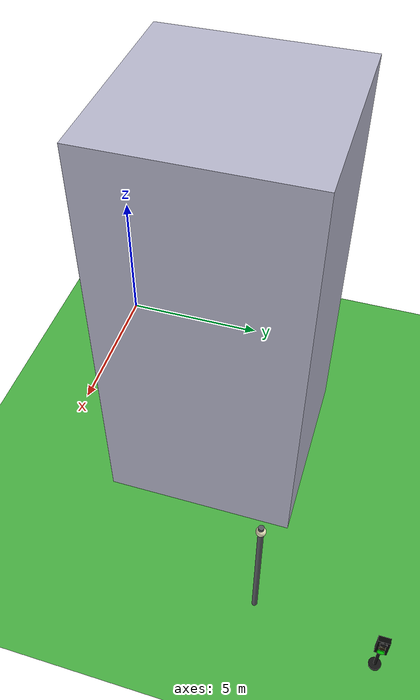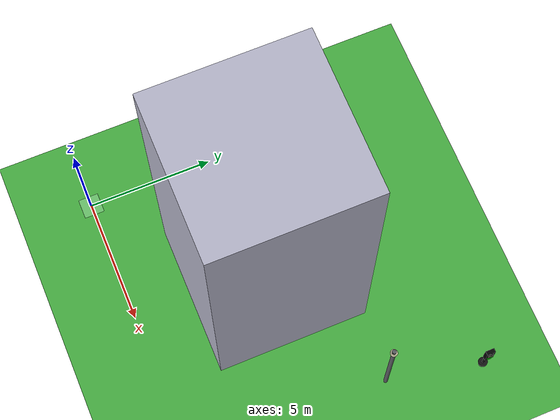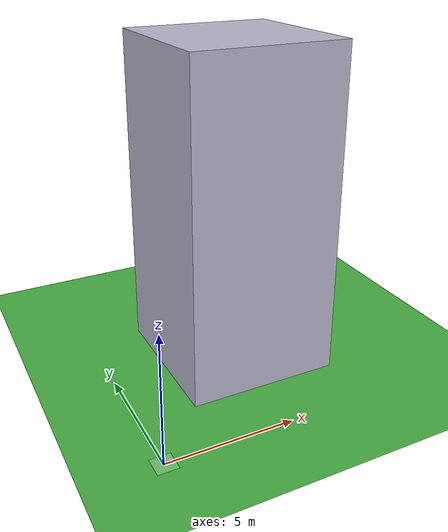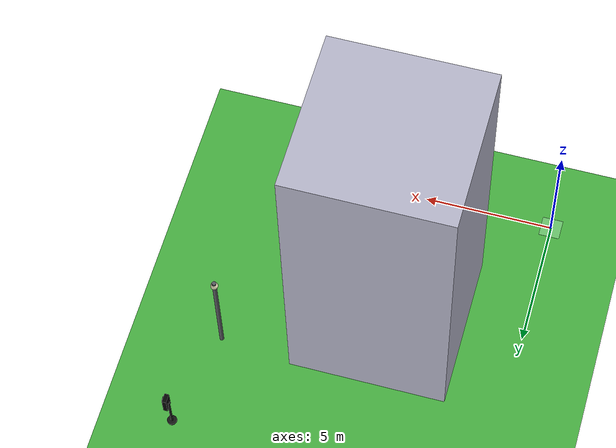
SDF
<sdf version="1.10">
 <world name="city_second">
  <model name="ground_plane">
   <static>true</static>
   <link name="link">
    <collision name="collision">
     <geometry><plane><normal>0 0 1</normal><size>300 300</size></plane></geometry>
    </collision>
    <visual name="visual">
     <geometry><plane><normal>0 0 1</normal><size>300 300</size></plane></geometry>
     <material>
      <ambient>0.280000001 0.689999998 0.25999999 1</ambient>
      <diffuse>0.280000001 0.689999998 0.25999999 1</diffuse>
      <specular>0.0299999993 0.0299999993 0.0299999993 1</specular>
     </material>
    </visual>
    <inertial>
     <mass>1</mass>
     <inertia><ixx>1</ixx><ixy>0</ixy><ixz>0</ixz><iyy>1</iyy><iyz>0</iyz><izz>1</izz></inertia>
    </inertial>
   </link>
  </model>
  <model name="house_2_2">
   <static>true</static>
   <pose>5.2000000000000002 5.2999999999999998 6.5 0 0 0</pose>
   <link name="link">
    <collision name="collision"><geometry><box><size>6 6 13</size></box></geometry></collision>
    <visual name="visual">
     <geometry><box><size>6 6 13</size></box></geometry>
     <material>
      <ambient>0.720000029 0.720000029 0.800000012 1</ambient>
      <diffuse>0.720000029 0.720000029 0.800000012 1</diffuse>
      <specular>0.0299999993 0.0299999993 0.0299999993 1</specular>
     </material>
    </visual>
    <inertial>
     <mass>1</mass>
     <inertia><ixx>1</ixx><ixy>0</ixy><ixz>0</ixz><iyy>1</iyy><iyz>0</iyz><izz>1</izz></inertia>
    </inertial>
   </link>
  </model>
  <model name="robot_spawn_sidewalk_hint">
   <static>true</static>
   <pose>0 0 0.021000000000000001 0 0 0</pose>
   <link name="link">
    <visual name="visual">
     <geometry><box><size>0.80000000000000004 0.80000000000000004 0.0050000000000000001</size></box></geometry>
     <material>
      <ambient>0.550000012 0.860000014 0.569999993 0.649999976</ambient>
      <diffuse>0.550000012 0.860000014 0.569999993 0.649999976</diffuse>
      <specular>0 0 0 1</specular>
     </material>
     <transparency>0.34999999999999998</transparency>
    </visual>
    <inertial>
     <mass>1</mass>
     <inertia><ixx>1</ixx><ixy>0</ixy><ixz>0</ixz><iyy>1</iyy><iyz>0</iyz><izz>1</izz></inertia>
    </inertial>
   </link>
  </model>
  <model name="lamp_1_2_10">
   <static>true</static>
   <pose>10.9572 7.9459400000000002 2.2000000000000002 0 0 0</pose>
   <link name="link">
    <collision name="collision">
     <geometry>
      <cylinder><radius>0.080000000000000002</radius><length>4.4000000000000004</length></cylinder>
     </geometry>
    </collision>
    <visual name="pole">
     <geometry>
      <cylinder><radius>0.080000000000000002</radius><length>4.4000000000000004</length></cylinder>
     </geometry>
     <material>
      <ambient>0.349999994 0.360000014 0.379999995 1</ambient>
      <diffuse>0.349999994 0.360000014 0.379999995 1</diffuse>
      <specular>0.0299999993 0.0299999993 0.0299999993 1</specular>
     </material>
    </visual>
    <visual name="lamp_head">
     <pose>0 0 2 0 0 0</pose>
     <geometry><sphere><radius>0.14000000000000001</radius></sphere></geometry>
     <material>
      <ambient>0.959999979 0.939999998 0.779999971 1</ambient>
      <diffuse>0.959999979 0.939999998 0.779999971 1</diffuse>
      <specular>0.0299999993 0.0299999993 0.0299999993 1</specular>
     </material>
    </visual>
    <inertial>
     <mass>1</mass>
     <inertia><ixx>1</ixx><ixy>0</ixy><ixz>0</ixz><iyy>1</iyy><iyz>0</iyz><izz>1</izz></inertia>
    </inertial>
   </link>
  </model>
  <model name="simple_traffic_light_green_east_1_2">
   <static>true</static>
   <pose>11.719691132736202 11.671792408999575 -1.3877787807814457e-17 0 0 -1.5707999672671704</pose>
   <link name="base">
    <pose>0 0 0.040000000000000001 0 0 0</pose>
    <collision name="collision">
     <geometry>
      <cylinder><radius>0.17999999999999999</radius><length>0.080000000000000002</length></cylinder>
     </geometry>
    </collision>
    <visual name="visual">
     <geometry>
      <cylinder><radius>0.17999999999999999</radius><length>0.080000000000000002</length></cylinder>
     </geometry>
     <material>
      <ambient>0.0799999982 0.0799999982 0.0799999982 1</ambient>
      <diffuse>0.0799999982 0.0799999982 0.0799999982 1</diffuse>
      <specular>0.150000006 0.150000006 0.150000006 1</specular>
      <emissive>0 0 0 1</emissive>
     </material>
    </visual>
   </link>
   <link name="pole">
    <pose>0 0 0.80000000000000004 0 0 0</pose>
    <collision name="collision">
     <geometry>
      <cylinder><radius>0.044999999999999998</radius><length>1.6000000000000001</length></cylinder>
     </geometry>
    </collision>
    <visual name="visual">
     <geometry>
      <cylinder><radius>0.044999999999999998</radius><length>1.6000000000000001</length></cylinder>
     </geometry>
     <material>
      <ambient>0.0799999982 0.0799999982 0.0799999982 1</ambient>
      <diffuse>0.0799999982 0.0799999982 0.0799999982 1</diffuse>
      <specular>0.150000006 0.150000006 0.150000006 1</specular>
      <emissive>0 0 0 1</emissive>
     </material>
    </visual>
   </link>
   <link name="signal_box">
    <pose>0 0.089999999999999997 1.55 0 0 0</pose>
    <collision name="collision">
     <geometry><box><size>0.34000000000000002 0.16 0.71999999999999997</size></box></geometry>
    </collision>
    <visual name="visual">
     <geometry><box><size>0.34000000000000002 0.16 0.71999999999999997</size></box></geometry>
     <material>
      <ambient>0.0199999996 0.0199999996 0.0199999996 1</ambient>
      <diffuse>0.0199999996 0.0199999996 0.0199999996 1</diffuse>
      <specular>0.150000006 0.150000006 0.150000006 1</specular>
      <emissive>0 0 0 1</emissive>
     </material>
    </visual>
   </link>
   <link name="red_lens">
    <pose>0 0.18099999999999999 1.78 1.5707963268 0 0</pose>
    <collision name="collision">
     <geometry><cylinder><radius>0.105</radius><length>0.035000000000000003</length></cylinder></geometry>
    </collision>
    <visual name="visual">
     <geometry><cylinder><radius>0.105</radius><length>0.035000000000000003</length></cylinder></geometry>
     <material>
      <ambient>0.0799999982 0.0799999982 0.0799999982 1</ambient>
      <diffuse>0.0799999982 0.0799999982 0.0799999982 1</diffuse>
      <specular>0.150000006 0.150000006 0.150000006 1</specular>
      <emissive>0 0 0 1</emissive>
     </material>
    </visual>
   </link>
   <link name="yellow_lens">
    <pose>0 0.182 1.55 1.5707963268 0 0</pose>
    <collision name="collision">
     <geometry>
      <cylinder><radius>0.095000000000000001</radius><length>0.035000000000000003</length></cylinder>
     </geometry>
    </collision>
    <visual name="visual">
     <geometry>
      <cylinder><radius>0.095000000000000001</radius><length>0.035000000000000003</length></cylinder>
     </geometry>
     <material>
      <ambient>0.119999997 0.100000001 0.0199999996 1</ambient>
      <diffuse>0.119999997 0.100000001 0.0199999996 1</diffuse>
      <specular>0.150000006 0.150000006 0.150000006 1</specular>
      <emissive>0 0 0 1</emissive>
     </material>
    </visual>
   </link>
   <link name="green_lens">
    <pose>0 0.183 1.3200000000000001 1.5707963268 0 0</pose>
    <collision name="collision">
     <geometry><cylinder><radius>0.105</radius><length>0.035000000000000003</length></cylinder></geometry>
    </collision>
    <visual name="visual">
     <geometry><cylinder><radius>0.105</radius><length>0.035000000000000003</length></cylinder></geometry>
     <material>
      <ambient>0.0199999996 1 0.0199999996 1</ambient>
      <diffuse>0.0199999996 1 0.0199999996 1</diffuse>
      <specular>0.150000006 0.150000006 0.150000006 1</specular>
      <emissive>0.0199999996 1 0.0199999996 1</emissive>
     </material>
    </visual>
   </link>
   <light name="green_glow" type="point">
    <pose>0 0.28 1.32 0 0 0</pose>
    <diffuse>0.02 1 0.02 1</diffuse>
    <specular>0.02 1 0.02 1</specular>
    <attenuation>
     <range>3.0</range>
     <constant>0.8</constant>
     <linear>0.15</linear>
     <quadratic>0.02</quadratic>
    </attenuation>
    <cast_shadows>false</cast_shadows>
   </light>
  </model>
 </world>
</sdf>
